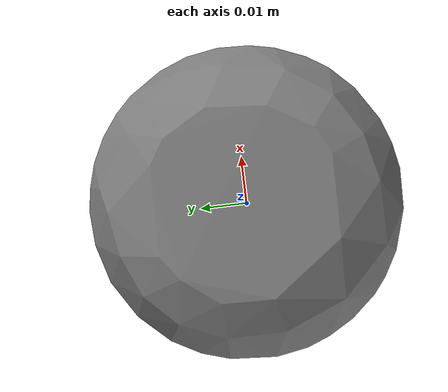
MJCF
<mujoco model="lens_Nikon_1_AW1_w11275mm_Lens_Silver_M">
  <default>
    <default class="visual">
      <geom group="2" type="mesh" contype="0" conaffinity="0" />
    </default>
    <default class="collision">
      <geom group="3" type="mesh" />
    </default>
  </default>
  <asset>
    <mesh file="lens_Nikon_1_AW1_w11275mm_Lens_Silver_M.stl" />
    <mesh file="lens_Nikon_1_AW1_w11275mm_Lens_Silver_M_collision_0.stl" />
    <mesh file="lens_Nikon_1_AW1_w11275mm_Lens_Silver_M_collision_1.stl" />
    <mesh file="lens_Nikon_1_AW1_w11275mm_Lens_Silver_M_collision_2.stl" />
    <mesh file="lens_Nikon_1_AW1_w11275mm_Lens_Silver_M_collision_3.stl" />
    <mesh file="lens_Nikon_1_AW1_w11275mm_Lens_Silver_M_collision_4.stl" />
    <mesh file="lens_Nikon_1_AW1_w11275mm_Lens_Silver_M_collision_5.stl" />
    <mesh file="lens_Nikon_1_AW1_w11275mm_Lens_Silver_M_collision_6.stl" />
    <mesh file="lens_Nikon_1_AW1_w11275mm_Lens_Silver_M_collision_7.stl" />
    <mesh file="lens_Nikon_1_AW1_w11275mm_Lens_Silver_M_collision_8.stl" />
    <mesh file="lens_Nikon_1_AW1_w11275mm_Lens_Silver_M_collision_9.stl" />
    <mesh file="lens_Nikon_1_AW1_w11275mm_Lens_Silver_M_collision_10.stl" />
    <mesh file="lens_Nikon_1_AW1_w11275mm_Lens_Silver_M_collision_11.stl" />
    <mesh file="lens_Nikon_1_AW1_w11275mm_Lens_Silver_M_collision_12.stl" />
    <mesh file="lens_Nikon_1_AW1_w11275mm_Lens_Silver_M_collision_13.stl" />
    <mesh file="lens_Nikon_1_AW1_w11275mm_Lens_Silver_M_collision_14.stl" />
    <mesh file="lens_Nikon_1_AW1_w11275mm_Lens_Silver_M_collision_15.stl" />
  </asset>
  <worldbody>
    <body name="lens_Nikon_1_AW1_w11275mm_Lens_Silver_M">
      <geom mesh="lens_Nikon_1_AW1_w11275mm_Lens_Silver_M" class="visual" />
      <geom mesh="lens_Nikon_1_AW1_w11275mm_Lens_Silver_M_collision_0" class="collision" />
      <geom mesh="lens_Nikon_1_AW1_w11275mm_Lens_Silver_M_collision_1" class="collision" />
      <geom mesh="lens_Nikon_1_AW1_w11275mm_Lens_Silver_M_collision_2" class="collision" />
      <geom mesh="lens_Nikon_1_AW1_w11275mm_Lens_Silver_M_collision_3" class="collision" />
      <geom mesh="lens_Nikon_1_AW1_w11275mm_Lens_Silver_M_collision_4" class="collision" />
      <geom mesh="lens_Nikon_1_AW1_w11275mm_Lens_Silver_M_collision_5" class="collision" />
      <geom mesh="lens_Nikon_1_AW1_w11275mm_Lens_Silver_M_collision_6" class="collision" />
      <geom mesh="lens_Nikon_1_AW1_w11275mm_Lens_Silver_M_collision_7" class="collision" />
      <geom mesh="lens_Nikon_1_AW1_w11275mm_Lens_Silver_M_collision_8" class="collision" />
      <geom mesh="lens_Nikon_1_AW1_w11275mm_Lens_Silver_M_collision_9" class="collision" />
      <geom mesh="lens_Nikon_1_AW1_w11275mm_Lens_Silver_M_collision_10" class="collision" />
      <geom mesh="lens_Nikon_1_AW1_w11275mm_Lens_Silver_M_collision_11" class="collision" />
      <geom mesh="lens_Nikon_1_AW1_w11275mm_Lens_Silver_M_collision_12" class="collision" />
      <geom mesh="lens_Nikon_1_AW1_w11275mm_Lens_Silver_M_collision_13" class="collision" />
      <geom mesh="lens_Nikon_1_AW1_w11275mm_Lens_Silver_M_collision_14" class="collision" />
      <geom mesh="lens_Nikon_1_AW1_w11275mm_Lens_Silver_M_collision_15" class="collision" />
    </body>
  </worldbody>
</mujoco>
